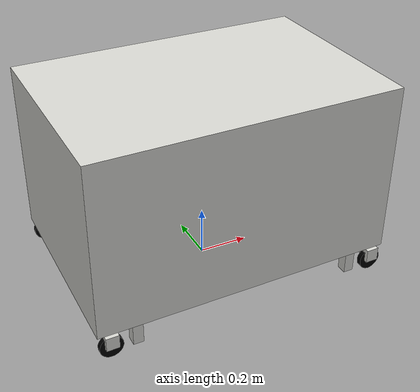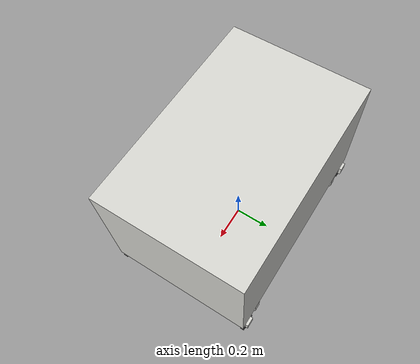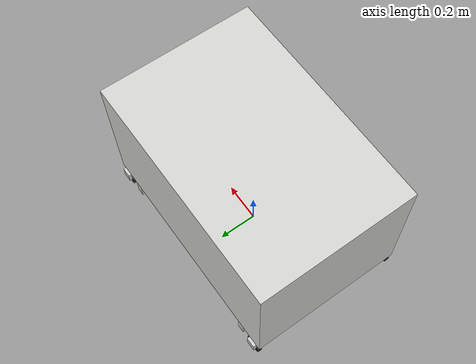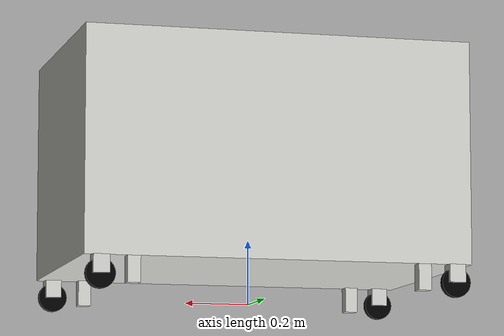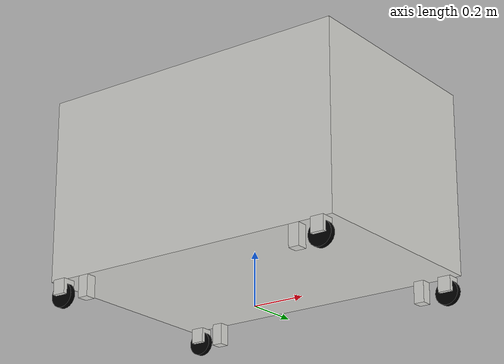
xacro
<?xml version="1.0"?>
<robot name="educational_cell" xmlns:xacro="http://wiki.ros.org/xacro">

  <!-- Utils -->
  <xacro:include filename="$(find robot_description)/urdf/utils.xacro" />

  <!-- Table model-->
  <xacro:include filename="$(find robot_description)/urdf/educational_cell.urdf.xacro"/>
</robot>

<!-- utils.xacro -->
<robot xmlns:xacro="http://ros.org/wiki/xacro">

  <!-- Materials -->
  <material name="FANUC_Black">
    <color rgba="0 0 0 1"/>
  </material>

  <material name="FANUC_Yellow">
    <color rgba="1.00 0.84 0.01 1.00"/>
  </material>

  <material name="FANUC_Green">
    <color rgba="0.43 0.68 0.26 1.00"/>
  </material>

  <material name="FANUC_White">
    <color rgba="0.84 0.84 0.82 1"/>
  </material>

  <!-- Inertia macros -->
  <xacro:macro name="box_inertia" params="m w h d">
    <inertial>
      <origin xyz="0 0 0" rpy="${pi/2} 0 ${pi/2}"/>
      <mass value="${m}"/>
      <inertia ixx="${(m/12) * (h*h + d*d)}" ixy="0.0" ixz="0.0" iyy="${(m/12) * (w*w + d*d)}" iyz="0.0" izz="${(m/12) * (w*w + h*h)}"/>
    </inertial>
  </xacro:macro>

  <xacro:macro name="cylinder_inertia" params="m r h">
    <inertial>
      <origin xyz="0 0 0" rpy="${pi/2} 0 0" />
      <mass value="${m}"/>
      <inertia ixx="${(m/12) * (3*r*r + h*h)}" ixy = "0" ixz = "0" iyy="${(m/12) * (3*r*r + h*h)}" iyz = "0" izz="${(m/2) * (r*r)}"/>
    </inertial>
  </xacro:macro>

</robot>

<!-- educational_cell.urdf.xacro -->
<robot xmlns:xacro="http://ros.org/wiki/xacro" name="educational_cell">

    <!-- Properties -->
    <xacro:property name="table_length" value="1.2"/>
    <xacro:property name="table_width" value="0.8"/>
    <xacro:property name="table_height" value="0.69"/>
    <xacro:property name="bracket_thickness" value="0.005"/>
    <xacro:property name="wheel_radius" value="0.045"/>
    <xacro:property name="wheel_width" value="0.02"/>
    <xacro:property name="wheel_offset_side" value="0.01"/>
    <xacro:property name="wheel_offset_end" value="0.05"/>
    <xacro:property name="foot_offset_end" value="0.15"/>
    <xacro:property name="foot_size" value="0.04"/>
    <xacro:property name="table_elevation" value="0.1"/>

    <!-- Main table body -->
    <link name="table">
        <visual>
            <geometry>
                <box size="${table_length} ${table_width} ${table_height}"/>
            </geometry>
            <origin xyz="0 0 ${table_elevation + table_height / 2}" rpy="0 0 0"/>
            <material name="FANUC_White"/>
        </visual>
        <collision>
            <geometry>
                <box size="${table_length} ${table_width} ${table_height}"/>
            </geometry>
            <origin xyz="0 0 ${table_elevation + table_height / 2}" rpy="0 0 0"/>
        </collision>
        <inertial>
            <mass value="10.0"/>
            <origin xyz="0 0 ${table_elevation + table_height / 2}" rpy="0 0 0"/>
            <inertia ixx="1" iyy="1" izz="1" ixy="0" ixz="0" iyz="0"/>
        </inertial>
    </link>

    <link name="world"/>
    <joint name="table_base_joint" type="fixed">
        <origin xyz="0 0 0" rpy="0 0 0"/>
        <parent link="world"/>
        <child link="table" />
      </joint>

    <!-- Reusable wheel+bracket macro -->
    <xacro:macro name="wheel" params="prefix x y">

        <!-- Bracket -->
        <link name="${prefix}_bracket">
            <visual>
                <geometry>
                    <box size="0.05 0.05 ${table_elevation - wheel_radius}"/>
                </geometry>
                <origin xyz="${x} ${y} ${(table_elevation + wheel_radius)/2}" rpy="0 0 0"/>
                <material name="FANUC_White"/>
            </visual>
            <collision>
                <geometry>
                    <box size="0.05 0.05 ${table_elevation - wheel_radius}"/>
                </geometry>
                <origin xyz="${x} ${y} ${(table_elevation + wheel_radius)/2}" rpy="0 0 0"/>
            </collision>
            <inertial>
                <mass value="0.2"/>
                <origin xyz="${x} ${y} ${(table_elevation + wheel_radius)/2}" rpy="0 0 0"/>
                <inertia ixx="0.001" iyy="0.001" izz="0.001" ixy="0" ixz="0" iyz="0"/>
            </inertial>
        </link>

        <joint name="${prefix}_bracket_joint" type="fixed">
            <parent link="table"/>
            <child link="${prefix}_bracket"/>
            <origin xyz="0 0 0" rpy="0 0 0"/>
        </joint>

        <!-- Wheel -->
        <link name="${prefix}_wheel">
            <visual>
                <geometry>
                    <cylinder radius="${wheel_radius}" length="${wheel_width}"/>
                </geometry>
                <origin xyz="${x} ${y} ${wheel_radius}" rpy="1.5708 0 0"/>
                <material name="FANUC_Black"/>
            </visual>
            <collision>
                <geometry>
                    <cylinder radius="${wheel_radius}" length="${wheel_width}"/>
                </geometry>
            <origin xyz="${x} ${y} ${wheel_radius}" rpy="1.5708 0 0"/>
            </collision>
            <inertial>
                <mass value="0.5"/>
                <origin xyz="${x} ${y} ${wheel_radius}" rpy="0 0 0"/>
                <inertia ixx="0.01" iyy="0.01" izz="0.01" ixy="0" ixz="0" iyz="0"/>
            </inertial>
        </link>

        <joint name="${prefix}_joint" type="fixed">
            <parent link="${prefix}_bracket"/>
            <child link="${prefix}_wheel"/>
            <origin xyz="0 0 0" rpy="0 0 0"/>
        </joint>
    </xacro:macro>

    <!-- Reusable foot macro -->
    <xacro:macro name="foot" params="prefix x y">
        <link name="${prefix}_foot">
            <visual>
                <geometry>
                    <box size="${foot_size} ${foot_size} 0.08"/>
                </geometry>
                <origin xyz="${x} ${y} 0.06" rpy="0 0 0"/>
                <material name="FANUC_White"/>
            </visual>
            <collision>
                <geometry>
                    <box size="${foot_size} ${foot_size} 0.08"/>
                </geometry>
            <origin xyz="${x} ${y} 0.06" rpy="0 0 0"/>
            </collision>
            <inertial>
                <mass value="0.1"/>
                <origin xyz="${x} ${y} 0.06" rpy="0 0 0"/>
                <inertia ixx="0.0001" iyy="0.0001" izz="0.0001" ixy="0" ixz="0" iyz="0"/>
            </inertial>
        </link>
    </xacro:macro>

    <!-- Wheels with brackets -->
    <xacro:wheel prefix="front_left" x="${table_length/2 - wheel_offset_end}" y="${table_width/2 - wheel_width/2}"/>
    <xacro:wheel prefix="rear_left" x="${-table_length/2 + wheel_offset_end}" y="${table_width/2 - wheel_width/2}"/>
    <xacro:wheel prefix="front_right" x="${table_length/2 - wheel_offset_end}" y="${-table_width/2 + wheel_width/2}"/>
    <xacro:wheel prefix="rear_right" x="${-table_length/2 + wheel_offset_end}" y="${-table_width/2 + wheel_width/2}"/>

    <!-- Feet -->
    <xacro:foot prefix="front_left" x="${table_length/2 - foot_offset_end}" y="${table_width/2 - foot_size/2}"/>
    <joint name="foot_front_left_joint" type="fixed">
        <parent link="table"/>
        <child link="front_left_foot"/>
        <origin xyz="0 0 0" rpy="0 0 0"/>
    </joint>

    <xacro:foot prefix="rear_left" x="${-table_length/2 + foot_offset_end}" y="${table_width/2 - foot_size/2}"/>
    <joint name="foot_rear_left_joint" type="fixed">
        <parent link="table"/>
        <child link="rear_left_foot"/>
        <origin xyz="0 0 0" rpy="0 0 0"/>
    </joint>

    <xacro:foot prefix="front_right" x="${table_length/2 - foot_offset_end}" y="${-table_width/2 + foot_size/2}"/>
    <joint name="foot_front_right_joint" type="fixed">
        <parent link="table"/>
        <child link="front_right_foot"/>
        <origin xyz="0 0 0" rpy="0 0 0"/>
    </joint>

    <xacro:foot prefix="rear_right" x="${-table_length/2 + foot_offset_end}" y="${-table_width/2 + foot_size/2}"/>
    <joint name="foot_rear_right_joint" type="fixed">
        <parent link="table"/>
        <child link="rear_right_foot"/>
        <origin xyz="0 0 0" rpy="0 0 0"/>
    </joint>
</robot>
